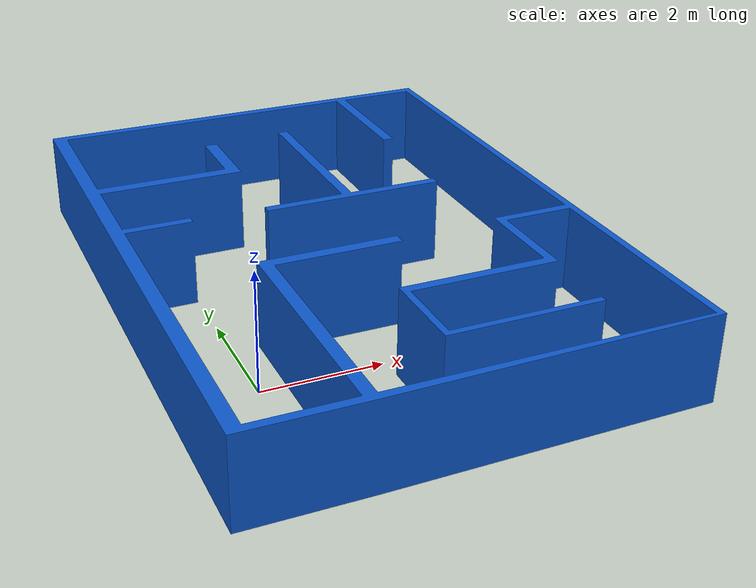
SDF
<?xml version="1.0" ?>
<sdf version="1.9">
  <model name="maze_model_rs">
    <pose>0 0 0 0 0 0</pose>
    <static>true</static>
    <link name="body">
      <visual name="visual">
        <geometry>
          <mesh><uri>models://maze/media/maze.dae</uri></mesh>
        </geometry>
      </visual>
      <collision name="collision">
        <geometry>
          <mesh><uri>models://maze/media/maze.dae</uri></mesh>
        </geometry>
      </collision>
    </link>
  </model>
</sdf>
